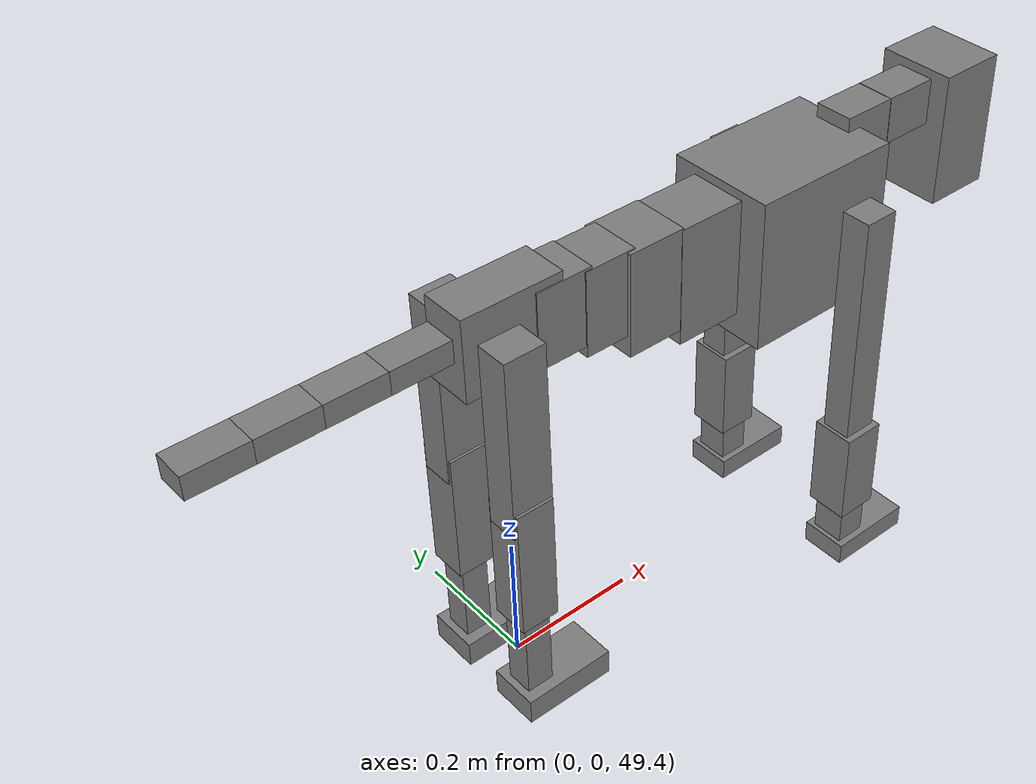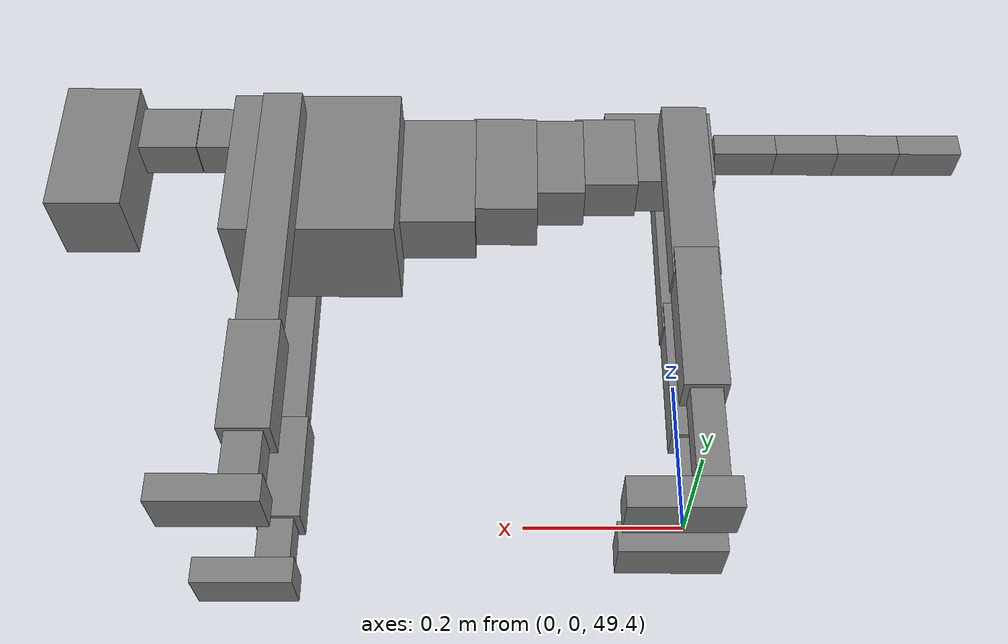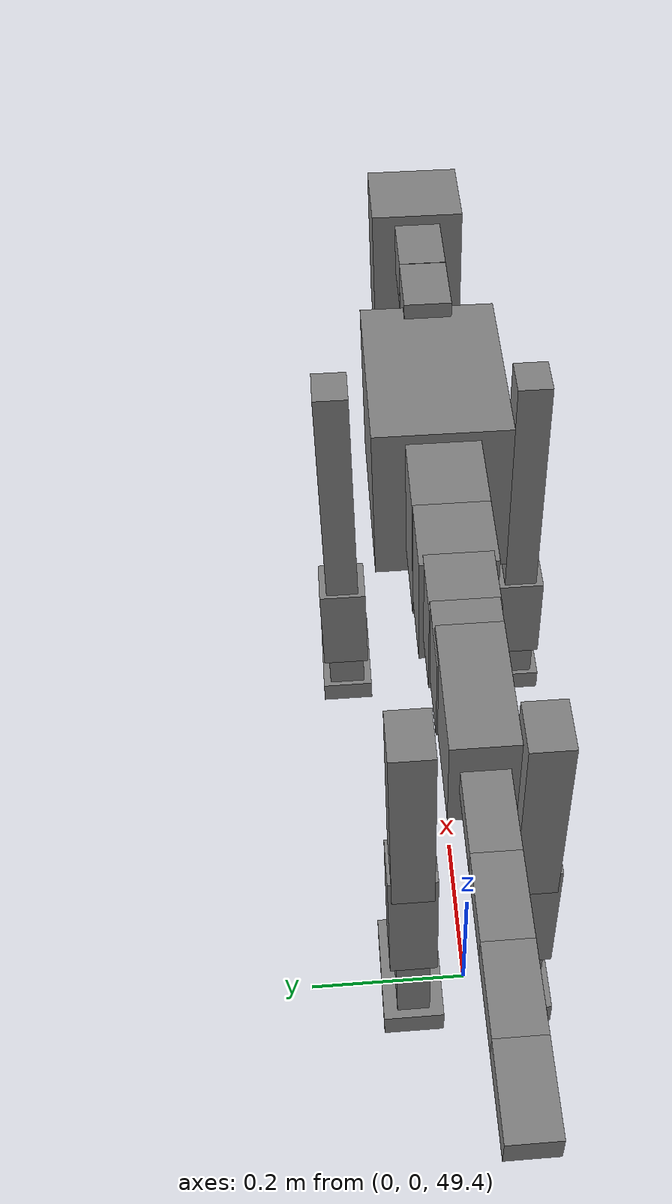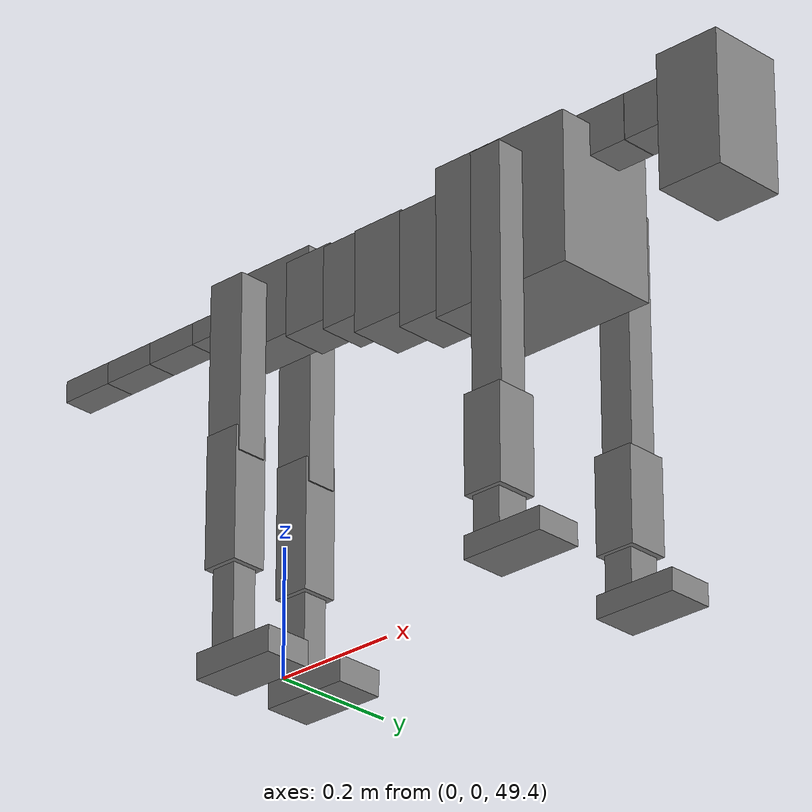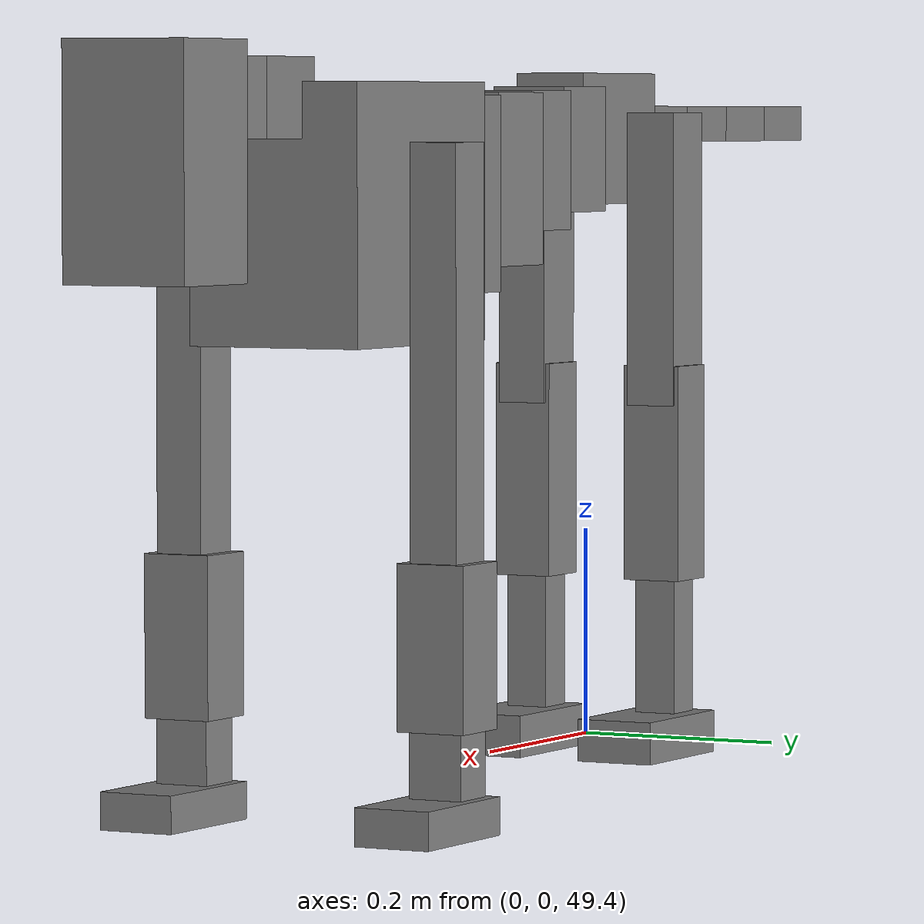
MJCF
<mujoco model="dog">

    <default>
        <joint armature="0.02" stiffness="1" damping="0.2" limited="true"/>
        <geom condim="3" friction="1 0.05 0.05" margin="0.01"/>
        <motor ctrllimited="true" ctrlrange="-1.0 1.0" forcelimited="true" gear="50"/>
    </default>

    <compiler inertiafromgeom="true" angle="radian"/>

    <option timestep="0.016" iterations="50" tolerance="1e-10" solver="Newton" jacobian="dense" cone="pyramidal"/>

    <size nconmax="20000" njmax="60000" nstack="5000000"/>
    <visual>
        <map force="0.1" zfar="30"/>
        <rgba haze="0.15 0.25 0.35 1"/>
        <quality shadowsize="2048"/>
        <global offwidth="800" offheight="800"/>
    </visual>

    <asset>
        <texture type="skybox" builtin="gradient" rgb1="0.3 0.5 0.7" rgb2="0 0 0" width="512" height="512"/>
        <texture name="texplane" type="2d" builtin="checker" rgb1=".2 .3 .4" rgb2=".1 0.15 0.2" width="512" height="512"
                 mark="cross" markrgb=".8 .8 .8"/>
        <texture name="texgeom" type="cube" builtin="flat" mark="cross" width="127" height="1278" rgb1="0.8 0.6 0.4"
                 rgb2="0.8 0.6 0.4" markrgb="1 1 1" random="0.01"/>

        <material name="matplane" reflectance="0.3" texture="texplane" texrepeat="1 1" texuniform="true"/>
        <material name="matgeom" texture="texgeom" texuniform="true" rgba="0.8 0.6 .4 1"/>
    </asset>

    <worldbody>
        <geom name="floor" pos="0 0 0" size="0 0 .25" type="plane" material="matplane" condim="3"/>

        <light directional="false" diffuse=".2 .2 .2" specular="0 0 0" pos="0 0 5" dir="0 0 -1" castshadow="false"/>
        <light mode="targetbodycom" target="torso" directional="false" diffuse=".8 .8 .8" specular="0.3 0.3 0.3"
               pos="0 0 4.0" dir="0 0 -1"/>

        <body name="root" pos="0 0 50">
            <freejoint name="root_1"/>
            <geom type="box" pos="0 0 -0.02" size="0.0774  0.0358  0.063" density="2030"/>

            <body name="spine1" pos="0.054 0 0">
                <joint name="spine1_y" axis="0 1 0" range="0 0.7" limited="true"/>
                <geom type="box" pos="0.02375 0 -0.03" size="0.04375  0.0375  0.05985" density="2030"/>

                <body name="spine2" pos="0.0612 0 0">
                    <joint name="spine2_y" axis="0 1 0" range="-0.15 0.15" limited="true"/>
                    <geom type="box" pos="0.03555  0  -0.04" size="0.04055  0.039  0.06615" density="2030"/>

                    <body name="spine3" pos="0.0730 0 0">
                        <joint name="spine3_y" axis="0 1 0" range="-0.15 0.15" limited="true"/>
                        <geom type="box" pos="0.03555  0  -0.057" size="0.04555  0.0445  0.081" density="2030"/>

                        <body name="spine4" pos="0.0780 0 0">
                            <joint name="spine4_y" axis="0 1 0" range="-0.15 0.15" limited="true"/>
                            <geom type="box" pos="0.05265  0  -0.07" size="0.05265  0.045  0.09135" density="2030"/>

                            <body name="torso" pos="0.1082 0 0">
                                <joint name="torso_y" axis="0 1 0" range="-0.15 0.15" limited="true"/>
                                <geom type="box" pos="0.11925  0  -0.085" size="0.11925  0.085  0.11745"
                                      density="2030"/>

                                <body name="neck1" pos="0.2160  0   0.0180">
                                    <joint name="neck1_y" axis="0 1 0" range="-1.2  -1" limited="true"/>
                                    <geom type="box" pos="0.0423  0  0" size="0.0423  0.03  0.036" density="2325"/>

                                    <body name="neck2" pos="0.0853  0  0">
                                        <joint name="neck2_y" axis="0 1 0" range="0.1  0" limited="true"/>
                                        <geom type="box" pos="0.0423  0  0" size="0.0423  0.03  0.036" density="2325"/>

                                        <body name="head" pos="0.0853  0  0">
                                            <joint name="head_y" axis="0 1 0" range="-0.3  -0.2" limited="true"/>
                                            <geom type="box" pos="0.0531  0  -0.055" size="0.0531  0.06  0.1044"
                                                  density="4030"/>

                                        </body>
                                    </body>
                                </body>

                                <body name="front_shoulder" pos="0.156  0   -0.0480">
                                    <joint name="front_shoulder_y" axis="0 1 0" range="-1 1.5" limited="true"/>
                                    <geom type="box" pos="0 0.13 -0.1724" size="0.0268  0.0229  0.1991" density="1158"/>
                                    <geom type="box" pos="0 -0.13 -0.1724" size="0.0268  0.0229  0.1991"
                                          density="1158"/>

                                    <body name="front_elbow" pos="0  0  -0.3449">
                                        <joint name="front_elbow_y" axis="0 1 0" range="-2 0" limited="true"/>
                                        <geom type="box" pos="0 0.13 -0.0748" size="0.0323  0.0330  0.0748"
                                              density="1081"/>
                                        <geom type="box" pos="0 -0.13 -0.0748" size="0.0323  0.0330  0.0748"
                                              density="1081"/>

                                        <body name="front_wrist" pos="0  0  -0.1497">
                                            <joint name="front_wrist_y" axis="0 1 0" range="-0.2 0" limited="true"/>
                                            <geom type="box" pos="0 0.13 -0.0374" size="0.0234  0.0260  0.0506"
                                                  density="1664"/>
                                            <geom type="box" pos="0 -0.13 -0.0374" size="0.0234  0.0260  0.0506"
                                                  density="1664"/>

                                            <body name="front_finger_end" pos="0  0  -0.0748">
                                                <joint name="front_finger_y" axis="0 1 0" range="-0.4 1"
                                                       limited="true"/>
                                                <geom type="box" pos="0.0367  0.13  -0.0023"
                                                      size="0.0672  0.0367  0.0173" density="1515"/>
                                                <geom type="box" pos="0.0367  -0.13  -0.0023"
                                                      size="0.0672  0.0367  0.0173" density="1515"/>

                                            </body>

                                        </body>
                                    </body>
                                </body>

                            </body>
                        </body>
                    </body>
                </body>
            </body>

            <body name="back_hip" pos="-0.03 0 -0.018">
                <joint name="back_hip_y" axis="0 1 0" range="-1.5 0.3" limited="true"/>
                <geom type="box" pos="0 0.07 -0.1187" size="0.0317  0.0248  0.1415" density="1154"/>
                <geom type="box" pos="0 -0.07 -0.1187" size="0.0317  0.0248  0.1415" density="1154"/>

                <body name="back_knee" pos="0  0  -0.2374">
                    <joint name="back_knee_y" axis="0 1 0" range="0 2.8" limited="true"/>
                    <geom type="box" pos="0 0.07 -0.0885" size="0.0294  0.0289  0.1041" density="1227"/>
                    <geom type="box" pos="0 -0.07 -0.0885" size="0.0294  0.0289  0.1041" density="1227"/>

                    <body name="back_ankle" pos="0  0  -0.1771">
                        <joint name="back_ankle_y" axis="0 1 0" range="-2.2 0" limited="true"/>
                        <geom type="box" pos="0 0.07 -0.0800" size="0.0208  0.0208  0.0913" density="1284"/>
                        <geom type="box" pos="0 -0.07 -0.0800" size="0.0208  0.0208  0.0913" density="1284"/>

                        <body name="back_toe_end" pos="0  0  -0.1601">
                            <joint name="back_toe_y" axis="0 1 0" range="-0.4 1" limited="true"/>
                            <geom type="box" pos="0.0386  0.07  -0.0053" size="0.0707  0.0386  0.0203" density="1515"/>
                            <geom type="box" pos="0.0386  -0.07  -0.0053" size="0.0707  0.0386  0.0203" density="1515"/>

                        </body>
                    </body>
                </body>
            </body>

            <body name="tail1" pos="-0.074 0 -0.006">
                <joint name="tail1_y" axis="0 1 0" range="-0.2 0.2" limited="true"/>
                <geom type="box" pos="-0.0536  0  0" size="0.045  0.025  0.0175" density="1587"/>

                <body name="tail2" pos="-0.09 0 0">
                    <joint name="tail2_y" axis="0 1 0" range="-0.2 0.2" limited="true"/>
                    <geom type="box" pos="-0.0536  0  0" size="0.045  0.025  0.0175" density="1587"/>

                    <body name="tail3" pos="-0.09 0 0">
                        <joint name="tail3_y" axis="0 1 0" range="-0.2 0.2" limited="true"/>
                        <geom type="box" pos="-0.0536  0  0" size="0.045  0.025  0.0175" density="1587"/>

                        <body name="tail4" pos="-0.09 0 0">
                            <joint name="tail4_y" axis="0 1 0" range="-0.2 0.2" limited="true"/>
                            <geom type="box" pos="-0.0536  0  0" size="0.045  0.025  0.0175" density="1587"/>

                        </body>
                    </body>
                </body>
            </body>
        </body>
    </worldbody>

    <actuator>
        <motor joint="spine1_y" forcerange="-150 150     "/>
        <motor joint="spine2_y" forcerange="-150 150     "/>
        <motor joint="spine3_y" forcerange="-150 150     "/>
        <motor joint="spine4_y" forcerange="-150 150     "/>
        <motor joint="torso_y" forcerange="-150 150     "/>
        <motor joint="neck1_y" forcerange="-100 100       "/>
        <motor joint="neck2_y" forcerange="-100 100       "/>
        <motor joint="head_y" forcerange="-150 150       "/>
        <motor joint="front_shoulder_y" forcerange="-130.57 122.04"/>
        <motor joint="front_elbow_y" forcerange="-175.72 164.64"/>
        <motor joint="front_wrist_y" forcerange="-72.25 135.59"/>
        <motor joint="front_finger_y" forcerange="-86.16 69.32"/>
        <motor joint="back_hip_y" forcerange="-244.12 287.05"/>
        <motor joint="back_knee_y" forcerange="-381.80 239.28"/>
        <motor joint="back_angle_y" forcerange="-130.27 103.33"/>
        <motor joint="back_toe_y" forcerange="-125.45 103.19"/>
        <motor joint="tail1_y" forcerange="-50 50     "/>
        <motor joint="tail2_y" forcerange="-50 50     "/>
        <motor joint="tail3_y" forcerange="-50 50     "/>
        <motor joint="tail4_y" forcerange="-50 50     "/>
    </actuator>
</mujoco>
